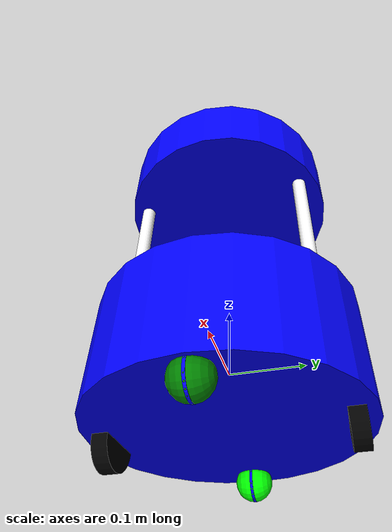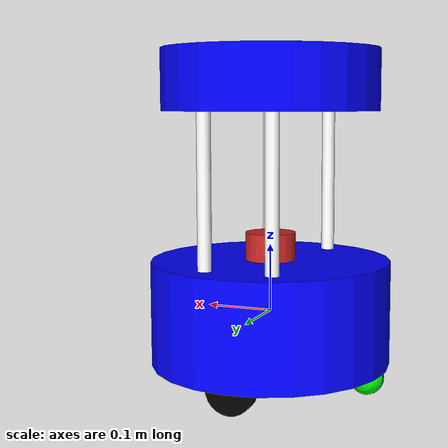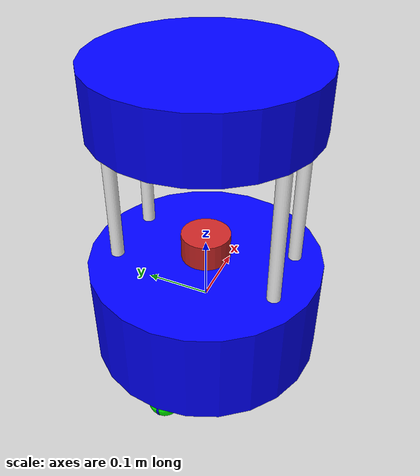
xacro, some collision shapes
<?xml version="1.0"?>
<robot xmlns:xacro="http://www.ros.org/wiki/xacro" name="barista_bot">

    <xacro:include filename="$(find barista_robot_description)/xacro/wheel.xacro" />
    <xacro:include filename="$(find barista_robot_description)/xacro/standoff.xacro" />
    <xacro:include filename="$(find barista_robot_description)/xacro/cup_holder_tray.xacro" />

    <material name="red">
      <color rgba="1.0 0.0 0.0 1"/>
    </material>

    <material name="green_light">
        <color rgba="0.0 1.0 0.0 1"/>
    </material>

    <material name="green_dark">
        <color rgba="0.0 0.5 0.0 1"/>
    </material>

    <material name="blue">
        <color rgba="0.0 0.0 1.0 1"/>
    </material>

    <material name="black">
        <color rgba="0.0 0.0 0.0 1"/>
    </material>

    <material name="white">
        <color rgba="1.0 1.0 1.0 1"/>
    </material>

    <link name = "base_link">
    </link>

    <link name="main_body">
        <visual>
            <geometry>
                <cylinder length="0.155" radius="0.178"/>
            </geometry>
            <material name="blue"/>
        </visual>

        <collision>
            <origin rpy="0 0 0" xyz="0 0 0"/>
            <geometry>
                <cylinder length="0.155" radius="0.178"/>
            </geometry>
            <material name="blue"/>
        </collision>

        <inertial>
            <origin rpy="0 0 0" xyz="0 0 0"/>
            <mass value="2.0"/>
            <inertia ixx="0.019846166666666665" ixy="0" ixz="0" iyy="0.019846166666666665" iyz="0" izz="0.031684"/>
        </inertial>
    </link>

    <gazebo reference="main_body">
        <material>Gazebo/Blue</material>
    </gazebo>

    <joint name="base_link_joint" type="fixed">
        <origin rpy="0 0 0" xyz="0 0 0" />
        <parent link="base_link" />
        <child link="main_body" />
    </joint>

    <!-- Wheel Left -->
    <xacro:wheel wheel_name="left_wheel" />

    <joint name="joint_left_wheel" type="continuous">
        <origin rpy="0 0 0" xyz="0 0.15 -0.0775"/>
        <child link="left_wheel"/>
        <parent link="main_body"/>
        <axis rpy="0 0 0" xyz="0 1 0"/>
        <limit effort="10000" velocity="1000"/>
        <joint_properties damping="1.0" friction="1.0"/>
    </joint>

    <!-- Wheel Right -->
    <xacro:wheel wheel_name="right_wheel" />

    <joint name="joint_right_wheel" type="continuous">
        <origin rpy="0 0 0" xyz="0 -0.15 -0.0775"/>
        <child link="right_wheel"/>
        <parent link="main_body"/>
        <axis rpy="0 0 0" xyz="0 1 0"/>
        <limit effort="10000" velocity="1000"/>
        <joint_properties damping="1.0" friction="1.0"/>
    </joint>

    <!-- Caster Wheel Front -->
    <link name="front_yaw_link">
        <visual>
            <origin rpy="0 1.5707 1.5707" xyz="0 0 0"/>
            <geometry>
            <cylinder length="0.00352" radius="0.025"/>
            </geometry>
            <material name="blue"/>
        </visual>

        <collision>
            <origin rpy="0 1.5707 1.5707" xyz="0 0 0"/>
            <geometry>
            <cylinder length="0.00352" radius="0.025"/>
            </geometry>
        </collision>

        <inertial>
            <origin rpy="0 1.5707 1.5707" xyz="0 0 0"/>
            <mass value="0.01"/>
            <inertia ixx="1.5728253333333338e-06" ixy="0" ixz="0" iyy="1.5728253333333338e-06" iyz="0" izz="3.1250000000000006e-06"/>
        </inertial>

    </link>

    <joint name="front_yaw_joint" type="continuous">
        <origin rpy="0 0 0" xyz="0.15 0 -0.0877" />
        <parent link="main_body" />
        <child link="front_yaw_link" />
        <axis xyz="0 0 1" />
        <limit effort="1000.0" velocity="100.0" />
        <dynamics damping="0.0" friction="0.1"/>
    </joint>

        <gazebo reference="front_yaw_link">
            <material>Gazebo/Blue</material>
        </gazebo>

    <link name="front_roll_link">
        <visual>
            <origin rpy="0 1.5707 1.5707" xyz="0 0 0"/>
            <geometry>
            <cylinder length="0.00352" radius="0.025"/>
            </geometry>
            <material name="red"/>
        </visual>

        <collision>
            <origin rpy="0 1.5707 1.5707" xyz="0 0 0"/>
            <geometry>
            <cylinder length="0.00352" radius="0.025"/>
            </geometry>
        </collision>

        <inertial>
            <origin rpy="0 1.5707 1.5707" xyz="0 0 0"/>
            <mass value="0.01"/>
            <inertia ixx="1.5728253333333338e-06" ixy="0" ixz="0" iyy="1.5728253333333338e-06" iyz="0" izz="3.1250000000000006e-06"/>
        </inertial>
    </link>

    <joint name="front_roll_joint" type="continuous">
        <origin rpy="0 0 0" xyz="0 0 0" />
        <parent link="front_yaw_link" />
        <child link="front_roll_link" />
        <axis xyz="1 0 0" />
        <limit effort="1000.0" velocity="100.0" />
        <dynamics damping="0.0" friction="0.1"/>
    </joint>

        <gazebo reference="front_roll_link">
            <material>Gazebo/Red</material>
        </gazebo>

    <link name="front_pitch_link">
        <visual>
        <origin rpy="0 1.5707 1.5707" xyz="0 0 0"/>
        <geometry>
            <sphere radius="0.025"/>
        </geometry>
        <material name="green_dark"/>
        </visual>

        <collision>
        <origin rpy="0 1.5707 1.5707" xyz="0 0 0"/>
        <geometry>
            <sphere radius="0.025"/>
        </geometry>
        </collision>

        <inertial>
            <origin rpy="0 1.5707 1.5707" xyz="0 0 0"/>
            <mass value="0.01"/>
            <inertia ixx="2.5000000000000006e-06" ixy="0" ixz="0" iyy="2.5000000000000006e-06" iyz="0" izz="2.5000000000000006e-06"/>
        </inertial>
    </link>

    <gazebo reference="front_pitch_link">
        <kp>1000000000000000000000000000.0</kp>
        <kd>1000000000000000000000000000.0</kd>
        <mu1>0.5</mu1>
        <mu2>0.5</mu2>
        <material>Gazebo/Grey</material>
    </gazebo>

    <joint name="front_pitch_joint" type="continuous">
        <origin rpy="0 0 0" xyz="0 0 0" />
        <parent link="front_roll_link" />
        <child link="front_pitch_link" />
        <axis xyz="0 1 0" />
        <limit effort="1000.0" velocity="100.0" />
        <dynamics damping="0.0" friction="0.1"/>
    </joint>

    <!-- Caster Wheel Back -->
    <link name="back_yaw_link">
        <visual>
            <origin rpy="0 1.5707 1.5707" xyz="0 0 0"/>
            <geometry>
            <cylinder length="0.00352" radius="0.025"/>
            </geometry>
            <material name="blue"/>
        </visual>

        <collision>
            <origin rpy="0 1.5707 1.5707" xyz="0 0 0"/>
            <geometry>
            <cylinder length="0.00352" radius="0.025"/>
            </geometry>
        </collision>

        <inertial>
            <origin rpy="0 1.5707 1.5707" xyz="0 0 0"/>
            <mass value="0.01"/>
            <inertia ixx="1.5728253333333338e-06" ixy="0" ixz="0" iyy="1.5728253333333338e-06" iyz="0" izz="3.1250000000000006e-06"/>
        </inertial>
    </link>

    <joint name="back_yaw_joint" type="continuous">
        <origin rpy="0 0 0" xyz="-0.15 0 -0.0877" />
        <parent link="main_body" />
        <child link="back_yaw_link" />
        <axis xyz="0 0 1" />
        <limit effort="1000.0" velocity="100.0" />
        <dynamics damping="0.0" friction="0.1"/>
    </joint>

        <gazebo reference="back_yaw_link">
            <material>Gazebo/Blue</material>
        </gazebo>

    <link name="back_roll_link">
        <visual>
            <origin rpy="0 1.5707 1.5707" xyz="0 0 0"/>
            <geometry>
            <cylinder length="0.00352" radius="0.025"/>
            </geometry>
            <material name="red"/>
        </visual>

        <collision>
            <origin rpy="0 1.5707 1.5707" xyz="0 0 0"/>
            <geometry>
            <cylinder length="0.00352" radius="0.025"/>
            </geometry>
        </collision>

        <inertial>
            <origin rpy="0 1.5707 1.5707" xyz="0 0 0"/>
            <mass value="0.01"/>
            <inertia ixx="1.5728253333333338e-06" ixy="0" ixz="0" iyy="1.5728253333333338e-06" iyz="0" izz="3.1250000000000006e-06"/>
        </inertial>
    </link>

    <joint name="back_roll_joint" type="continuous">
        <origin rpy="0 0 0" xyz="0 0 0" />
        <parent link="back_yaw_link" />
        <child link="back_roll_link" />
        <axis xyz="1 0 0" />
        <limit effort="1000.0" velocity="100.0" />
        <dynamics damping="0.0" friction="0.1"/>
    </joint>

        <gazebo reference="back_roll_link">
            <material>Gazebo/Red</material>
        </gazebo>

    <link name="back_pitch_link">
        <visual>
        <origin rpy="0 1.5707 1.5707" xyz="0 0 0"/>
        <geometry>
            <sphere radius="0.025"/>
        </geometry>
        <material name="green_light"/>
        </visual>

        <collision>
        <origin rpy="0 1.5707 1.5707" xyz="0 0 0"/>
        <geometry>
            <sphere radius="0.025"/>
        </geometry>
        </collision>

        <inertial>
            <origin rpy="0 1.5707 1.5707" xyz="0 0 0"/>
            <mass value="0.01"/>
            <inertia ixx="2.5000000000000006e-06" ixy="0" ixz="0" iyy="2.5000000000000006e-06" iyz="0" izz="2.5000000000000006e-06"/>
        </inertial>
    </link>

    <gazebo reference="back_pitch_link">
        <kp>1000000000000000000000000000.0</kp>
        <kd>1000000000000000000000000000.0</kd>
        <mu1>0.5</mu1>
        <mu2>0.5</mu2>
        <material>Gazebo/Grey</material>
    </gazebo>

    <joint name="back_pitch_joint" type="continuous">
        <origin rpy="0 0 0" xyz="0 0 0" />
        <parent link="back_roll_link" />
        <child link="back_pitch_link" />
        <axis xyz="0 1 0" />
        <limit effort="1000.0" velocity="100.0" />
        <dynamics damping="0.0" friction="0.1"/>
    </joint>

    <!-- Standoff Rods -->
    <xacro:standoff standoff_name="rod_right_front" standoff_width="0.01" standoff_length="0.220" />
    <xacro:standoff standoff_name="rod_right_back" standoff_width="0.01" standoff_length="0.220" />
    <xacro:standoff standoff_name="rod_left_front" standoff_width="0.01" standoff_length="0.220" />
    <xacro:standoff standoff_name="rod_left_back" standoff_width="0.01" standoff_length="0.220" />

    <joint name="right_rod_front_joint" type="fixed">
        <origin rpy="0 0 0" xyz="0.05 0.125 0.1875" />
        <parent link="main_body" />
        <child link="rod_right_front" />
    </joint>

    <joint name="right_rod_back_joint" type="fixed">
        <origin rpy="0 0 0" xyz="-0.05 0.125 0.1875" />
        <parent link="main_body" />
        <child link="rod_right_back" />
    </joint>

    <joint name="left_rod_front_joint" type="fixed">
        <origin rpy="0 0 0" xyz="0.05 -0.125 0.1875" />
        <parent link="main_body" />
        <child link="rod_left_front" />
    </joint>

    <joint name="left_rod_back_joint" type="fixed">
        <origin rpy="0 0 0" xyz="-0.05 -0.125 0.1875" />
        <parent link="main_body" />
        <child link="rod_left_back" />
    </joint>

    <xacro:cup_holder_tray cup_holder_tray_name="cup_holder" />

    <joint name="base_cup_joint" type="fixed">
        <origin rpy="0 0 0" xyz="0.0 0.0 0.3425" />
        <parent link="main_body" />
        <child link="cup_holder" />
    </joint>

    <!-- PLUGINS -->

    <!-- JOINT PUBLISHER -->
    <gazebo>
        <plugin name="joint_state" filename="libgazebo_ros_joint_state_publisher.so">
        <ros>
            <remapping>~/out:=joint_states</remapping>
        </ros>
        <update_rate>30</update_rate>

        <joint_name>joint_left_wheel</joint_name>
        <joint_name>joint_right_wheel</joint_name>
        <joint_name>front_yaw_joint</joint_name>
        <joint_name>back_yaw_joint</joint_name>
        <joint_name>front_roll_joint</joint_name>
        <joint_name>back_roll_joint</joint_name>
        <joint_name>front_pitch_joint</joint_name>
        <joint_name>back_pitch_joint</joint_name>

        </plugin>
    </gazebo>

    <!-- Differential drive -->
    <gazebo>
        <plugin filename="libgazebo_ros_diff_drive.so" name="differential_drive_controller">

        <!-- wheels -->
        <left_joint>joint_left_wheel</left_joint>
        <right_joint>joint_right_wheel</right_joint>

        <!-- kinematics -->
        <wheel_separation>0.3</wheel_separation>
        <wheel_diameter>0.0704</wheel_diameter>

        <!-- limits -->
        <max_wheel_torque>1.0</max_wheel_torque>
        <max_wheel_acceleration>2.0</max_wheel_acceleration>

        <!-- output -->
        <publish_odom>true</publish_odom>
        <publish_odom_tf>true</publish_odom_tf>

        <odometry_frame>odom</odometry_frame>
        <robot_base_frame>base_link</robot_base_frame>

        </plugin>
    </gazebo>

    <!-- Laser-->
    <xacro:property name="include_laser" value="true"/>
    <xacro:macro name="laser_sensors" params="include_laser:=true">
        <xacro:if value="${include_laser}">

            <link name="laser_scan_link">
                <visual>
                <origin rpy="0 0 0" xyz="0 0 0"/>
                <geometry>
                    <mesh filename="package://barista_robot_description/meshes/sick_s300.stl" scale="0.5 0.5 0.5"/>
                </geometry>
                </visual>

                <collision>
                <origin rpy="0 0 0" xyz="0 0 0.0204"/>
                <geometry>
                    <cylinder length="0.0408" radius="0.037493"/>
                </geometry>
                </collision>

                <inertial>

                <mass value="0.01"/>
                <origin rpy="0 0 0" xyz="0 0 0.0204"/>
                <inertia ixx="6.066578520833334e-06" ixy="0" ixz="0" iyy="6.072950163333333e-06" iyz="0" izz="9.365128684166666e-06"/>
                </inertial>
            </link>

            <joint name="laser_scan_link_joint" type="fixed">
                <origin rpy="0 0 0" xyz="0.0 0.0 0.0775"/>
                <parent link="main_body"/>
                <child link="laser_scan_link"/>
            </joint>

            <gazebo reference="laser_scan_link">
                <material>Gazebo/Red</material>
            </gazebo>

            <link name="laser_scan_frame">
            </link>

            <joint name="laser_scan_frame_joint" type="fixed">
                <origin rpy="0 0 0" xyz="0 0 0.05"/>
                <parent link="laser_scan_link"/>
                <child link="laser_scan_frame"/>
                <axis xyz="0 0 0"/>
            </joint>

            <gazebo reference="laser_scan_frame">
            <sensor name="sensor_ray" type="ray">
                <pose>0 0 0 0 0 0</pose>
                <ray>
                <scan>
                    <horizontal>
                    <samples>200</samples>
                    <resolution>1.0</resolution>
                    <min_angle>-3.14</min_angle>
                    <max_angle>3.14</max_angle>
                    </horizontal>
                </scan>
                <range>
                    <min>0.15</min>
                    <max>5.0</max>
                </range>
                </ray>
                <always_on>true</always_on>
                <visualize>true</visualize>
                <update_rate>100.0</update_rate>
                <plugin name="laser" filename="libgazebo_ros_ray_sensor.so">
                <ros>
                    <remapping>~/out:=scan</remapping>
                </ros>
                <output_type>sensor_msgs/LaserScan</output_type>
                </plugin>
            </sensor>
            </gazebo>
        </xacro:if>
    </xacro:macro>

    <!-- IF NOTHING IS PASSED LASER IS INCLUDED -->
    <xacro:laser_sensors/>

</robot>

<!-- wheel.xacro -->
<robot xmlns:xacro="http://www.ros.org/wiki/xacro">

    <xacro:property name="wheel_width" value="0.0206"/>
    <xacro:property name="wheel_radius" value="0.0352"/>

    <!-- Macro of cylinder inertia -->
    <xacro:macro name="cylinder_inertia" params="m r h">
        <inertia  ixx="${m*(3*r*r+h*h)/12}" ixy = "0" ixz = "0"
              iyy="${m*(3*r*r+h*h)/12}" iyz = "0"
              izz="${m*r*r/2}" />
    </xacro:macro>

    <!-- Wheel Macro -->
    <xacro:macro name="wheel" params="wheel_name">
        <link name="${wheel_name}">
            <visual>
                <origin rpy="0 1.5707 1.5707" xyz="0 0 0"/>
                <geometry>
                <cylinder length="${wheel_width}" radius="${wheel_radius}"/>
                </geometry>
                <material name="black">
                    <color rgba="0.0 0.0 0.0 1"/>
                </material>
            </visual>

            <collision>
                <origin rpy="0 1.5707 1.5707" xyz="0 0 0"/>
                <geometry>
                <cylinder length="${wheel_width}" radius="${wheel_radius}"/>
                </geometry>
            </collision>

            <inertial>
                <origin rpy="0 1.5707 1.5707" xyz="0 0 0"/>
                <mass value="0.75"/>
                <xacro:cylinder_inertia  m="0.75" r="${wheel_radius}" h="${wheel_width}" />
            </inertial>
        </link>

        <gazebo reference="${wheel_name}">
            <kp>1000000000000000000000000000.0</kp>
            <kd>1000000000000000000000000000.0</kd>
            <mu1>10.0</mu1>
            <mu2>10.0</mu2>
            <material>Gazebo/Black</material>
        </gazebo>
    </xacro:macro>
</robot>

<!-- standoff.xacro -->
<robot xmlns:xacro="http://www.ros.org/wiki/xacro">

    <!-- Macro of cylinder inertia -->
    <xacro:macro name="cylinder_inertia" params="m r h">
        <inertia  ixx="${m*(3*r*r+h*h)/12}" ixy = "0" ixz = "0"
              iyy="${m*(3*r*r+h*h)/12}" iyz = "0"
              izz="${m*r*r/2}" />
    </xacro:macro>

  <!-- Define the standoff macro with parameters for width and length -->
    <xacro:macro name="standoff" params="standoff_name standoff_width standoff_length">
        <link name="${standoff_name}">
            <visual>
                <geometry>
                    <cylinder length="${standoff_length}" radius="${standoff_width}"/>
                </geometry>
                <material name="white">
                    <color rgba="1.0 1.0 1.0 1"/>
                </material>
            </visual>

            <collision>
                <origin rpy="0 0 0" xyz="0 0 0"/>
                <geometry>
                    <cylinder length="${standoff_length}" radius="${standoff_width}"/>
                </geometry>
            </collision>

            <inertial>
                <origin rpy="0 0 0" xyz="0 0 0"/>
                <mass value="0.5"/>
                <xacro:cylinder_inertia  m="0.5" r="${standoff_width}" h="${standoff_length}" />
            </inertial>
        </link>

        <gazebo reference="${standoff_name}">
            <material>Gazebo/White</material>
        </gazebo>

    </xacro:macro>

</robot>

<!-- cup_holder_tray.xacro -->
<robot xmlns:xacro="http://www.ros.org/wiki/xacro">

    <xacro:property name="cup_holder_tray_width" value="0.090"/>
    <xacro:property name="cup_holder_tray_radius" value="0.160"/>

    <!-- Macro of cylinder inertia -->
    <xacro:macro name="cylinder_inertia" params="m r h">
        <inertia  ixx="${m*(3*r*r+h*h)/12}" ixy = "0" ixz = "0"
              iyy="${m*(3*r*r+h*h)/12}" iyz = "0"
              izz="${m*r*r/2}" />
    </xacro:macro>

    <!-- cup_holder_tray Macro -->
    <xacro:macro name="cup_holder_tray" params="cup_holder_tray_name">
        <link name="${cup_holder_tray_name}">
            <visual>
                <origin rpy="0 0 0" xyz="0 0 0"/>
                <geometry>
                <cylinder length="${cup_holder_tray_width}" radius="${cup_holder_tray_radius}"/>
                </geometry>
                <material name="blue">
                    <color rgba="0.0 0.0 1.0 1"/>
                </material>
            </visual>

            <collision>
                <origin rpy="0 0 0" xyz="0 0 0"/>
                <geometry>
                <cylinder length="${cup_holder_tray_width}" radius="${cup_holder_tray_radius}"/>
                </geometry>
            </collision>

            <inertial>
                <origin rpy="0 0 0" xyz="0 0 0"/>
                <mass value="1.0"/>
                <xacro:cylinder_inertia  m="1.0" r="${cup_holder_tray_radius}" h="${cup_holder_tray_width}" />
            </inertial>
        </link>

        <gazebo reference="${cup_holder_tray_name}">
            <material>Gazebo/Blue</material>
        </gazebo>
    </xacro:macro>
</robot>
